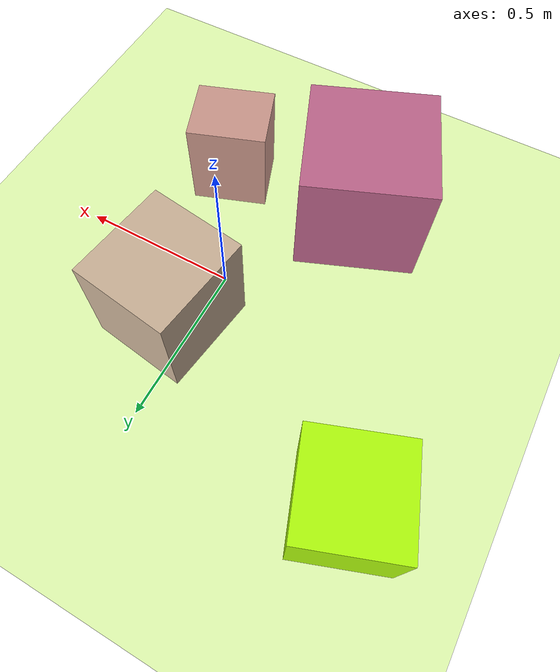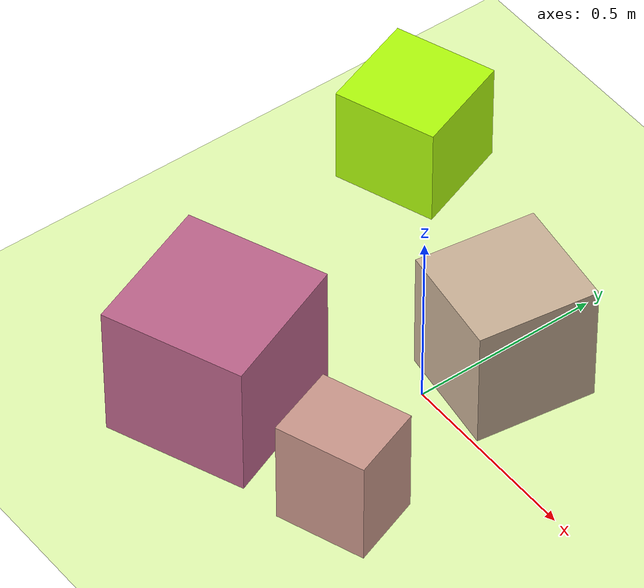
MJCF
<mujoco>
   <asset>
<texture type="skybox" builtin="gradient" rgb1="0.3 0.6 0.6" rgb2="0.9 0.9 0.9" width="256" height="256"/>
<texture name="checker_0" builtin="checker" rgb1="0.8 0.7 0.1" rgb2="0.7 0.1 1.0" width="200" height="200"/>
<texture name="checker_1" builtin="checker" rgb1="0.8 0.3 0.2" rgb2="0.8 0.9 0.9" width="200" height="200"/>
<texture name="checker_2" builtin="checker" rgb1="0.6 1.0 0.1" rgb2="0.8 1.0 0.0" width="200" height="200"/>
<texture name="flat_3" builtin="flat" rgb1="0.8 0.7 0.6" rgb2="0.8 0.7 0.6"  width="200" height="200"/><material name="checker_0_mat" reflectance="0" texrepeat="7 7" texture="checker_0" texuniform="false" />
<material name="checker_1_mat" reflectance="0" texrepeat="3 3" texture="checker_1" texuniform="false" />
<material name="checker_2_mat" reflectance="0" texrepeat="3 3" texture="checker_2" texuniform="false" />
<material name="flat_3_mat" reflectance="0" texture="flat_3" texuniform="true"/>
   </asset>

   <worldbody>
      <light diffuse=".9 .9 .9" pos="0 0 3" dir="0 0 -1"/>
     <geom type="plane" size="1 1 0.1" rgba="0.9 1.0 0.7 1"/>
<geom type="box" pos="-0.26 -0.41 0.19" size="0.19 0.19 0.19" material="checker_0_mat" euler="0 0 22" />
<geom type="box" pos="0.18 -0.37 0.15" size="0.12 0.1 0.15" material="checker_1_mat" euler="0 0 20" />
<geom type="box" pos="-0.63 0.46 0.14" size="0.14 0.14 0.14" material="checker_2_mat" euler="0 0 20" />
<geom type="box" pos="0.07 0.19 0.17" size="0.16 0.15 0.17" material="flat_3_mat" euler="0 0 82" /><camera euler="60 0 180" fovy="60" name="camera1" pos="-0.2 -1.5 1"></camera>   </worldbody>
</mujoco>
